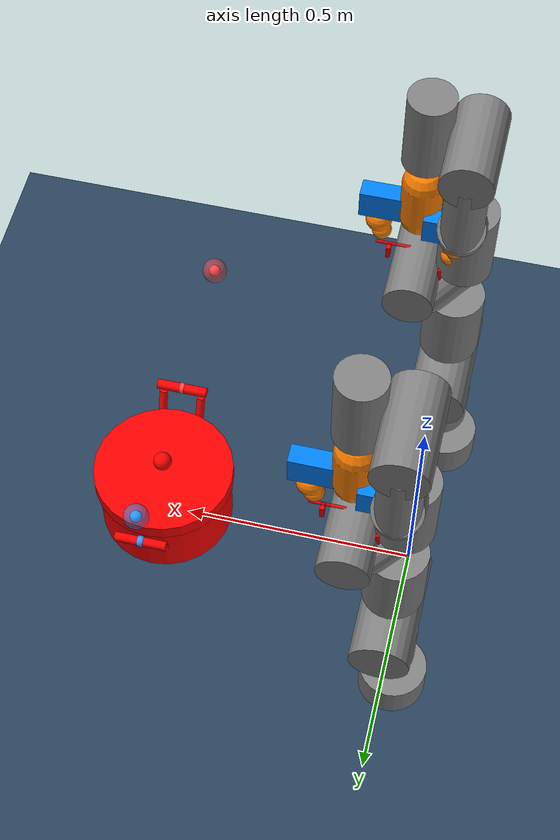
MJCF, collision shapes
<!-- PRIMITIVE-COLLISION variant of task.xml: same costs, weights and numerics,
     includes fr3_H_gripper_dual_prim.xml. Select with MJPC_DUAL_PRIM=1. -->
<mujoco model="Fr3HGripperDual">
  <size memory="100M" nuserdata="5"/>

  <custom>
    <numeric name="agent_planner" data="14"/>           <!-- FlowMPPIRpy, FM OFF -> vanilla MPPI over nu=16 -->
    <numeric name="agent_horizon" data="0.4"/>            <!-- headless-tuned: longer H -> smooth stop -->
    <numeric name="agent_timestep" data="0.03"/>   <!-- replan cost T_c must stay well below dt_mppi. nu=16: T_c 12.33ms at K=128/16thr -> ratio 0.41. -->
    <numeric name="agent_policy_width" data="0.0035"/>
    <numeric name="sampling_trajectories" data="128"/>    <!-- headless-tuned: K=128 -->
    <numeric name="sampling_spline_points" data="16"/>
    <numeric name="sampling_representation" data="0"/>
    <numeric name="sampling_exploration" data="1.0"/>
    <numeric name="sampling_lambda" data="1000"/>         <!-- if it DIVERGES, raise this (temperature) via MJPC_LAMBDA + watch ESS -->
    <numeric name="sampling_dc_noise" data="1"/>          <!-- DC noise = stable (per-knot diverges) -->
    <numeric name="perarm_groups" data="2"/>
    <numeric name="perarm_ctrl" size="16" data="0 0 0 0 0 0 0 0  1 1 1 1 1 1 1 1"/>
    <!-- where each arm's (pos3, ori3) block starts in the residual: L at 0, R at 41.
         Each arm's adaptive sigma is gated on its OWN error. -->
    <numeric name="perarm_res_off" size="2" data="0 41"/>
    <numeric name="perarm_term" size="15" data="0 0 0 0 0 0 0  1 1 1 1 1 1 1  -1"/>
    <numeric name="sampling_sigma_adapt" data="1"/>
    <numeric name="sampling_sigma_adapt_min" data="0.10"/>
    <numeric name="sampling_sigma_adapt_decay" data="0.97"/>
    <numeric name="sampling_sigma_adapt_thr" data="0.010"/>
    <numeric name="sampling_sigma_adapt_thr_ori" data="0.017"/>
    <numeric name="sampling_sigma_adapt_hyst" data="3"/>
    <numeric name="sampling_sigma_adapt_grow" data="1000"/>
    <numeric name="sampling_sigma_adapt_res_dim" data="6"/>   <!-- one (pos3,ori3) pair per group -->
    <numeric name="sampling_std_per_joint" size="16" data="1 1 1 1 0.5 0.5 0.5 0  1 1 1 1 0.5 0.5 0.5 0"/>
    <!-- per-joint cost separation (MJPC_PERJOINT=1): control-dim per arm joint,
         in joint_cent order (l1-7, r1-7). grippers (ctrl 7,15) are skipped. -->
    <numeric name="perjoint_ctrl" size="14" data="0 1 2 3 4 5 6  8 9 10 11 12 13 14"/>
  </custom>

  <statistic extent="1.0" center="0.3 0 0.4"/>
  <visual>
    <global azimuth="150" elevation="-20"/>
    <scale framelength="0.3" framewidth="0.03"/>
  </visual>

  <asset>
    <texture type="2d" name="groundplane" builtin="checker" mark="edge"
      rgb1="0.2 0.3 0.4" rgb2="0.1 0.2 0.3" markrgb="0.8 0.8 0.8" width="300" height="300"/>
    <material name="groundplane" texture="groundplane" texuniform="true" texrepeat="5 5" reflectance="0.2"/>
  </asset>

  <worldbody>
    <light pos="0 0 2" dir="0 0 -1" directional="true" diffuse="0.7 0.7 0.7"/>
    <geom name="floor" pos="0 0 0" size="0 0 0.05" type="plane" material="groundplane"/>

    <!-- per-arm draggable targets (mocap 0 = left, 1 = right). quat 0,1,0,0 = gripper-down. -->
    <body name="l_target" mocap="true" pos="0.5 0.3 0.5" quat="0 1 0 0">
      <geom type="sphere" size="0.025" rgba="0.2 0.6 1 0.5" contype="0" conaffinity="0"/>
      <site name="l_target_site" pos="0 0 0" size="0.012" rgba="0.2 0.6 1 1" group="0"/>
    </body>
    <body name="r_target" mocap="true" pos="0.5 -0.3 0.5" quat="0 1 0 0">
      <geom type="sphere" size="0.025" rgba="1 0.3 0.3 0.5" contype="0" conaffinity="0"/>
      <site name="r_target_site" pos="0 0 0" size="0.012" rgba="1 0.3 0.3 1" group="0"/>
    </body>
  </worldbody>

  <sensor>
    <!-- user = "norm_type weight w_lower w_upper p_smooth". Order MUST match Residual(). Total = 41. -->
    <user name="L_pos"    dim="3" user="2 1000000 0 5000000  0.01"/>
    <user name="L_ori"    dim="3" user="2 600000  0 6000000  0.01"/>
    <user name="L_cent"   dim="7" user="2 20      0 5000     1"/>
    <user name="L_nsvel"  dim="7" user="2 5000    0 5000000  0.01"/>
    <user name="L_vel"    dim="7" user="2 500     0 5000     0.01"/>
    <user name="L_limit"  dim="7" user="2 5000000 0 50000000 0.01"/>
    <user name="L_ureg"   dim="7" user="2 0.01    0 1        0.01"/>
    <user name="R_pos"    dim="3" user="2 1000000 0 5000000  0.01"/>
    <user name="R_ori"    dim="3" user="2 600000  0 6000000  0.01"/>
    <user name="R_cent"   dim="7" user="2 20      0 5000     1"/>
    <user name="R_nsvel"  dim="7" user="2 5000    0 5000000  0.01"/>
    <user name="R_vel"    dim="7" user="2 500     0 5000     0.01"/>
    <user name="R_limit"  dim="7" user="2 5000000 0 50000000 0.01"/>
    <user name="R_ureg"   dim="7" user="2 0.01    0 1        0.01"/>
    <!-- the ONLY coupling between the arms; shared by both per-arm costs -->
    <user name="collision" dim="1" user="2 500000 0 20000000 0.01"/>

    <framepos  name="l_hand"        objtype="site" objname="l_hand_site"/>
    <framequat name="l_hand_quat"   objtype="site" objname="l_hand_site"/>
    <framepos  name="r_hand"        objtype="site" objname="r_hand_site"/>
    <framequat name="r_hand_quat"   objtype="site" objname="r_hand_site"/>
    <framepos  name="l_target"      objtype="site" objname="l_target_site"/>
    <framequat name="l_target_quat" objtype="site" objname="l_target_site"/>
    <framepos  name="r_target"      objtype="site" objname="r_target_site"/>
    <framequat name="r_target_quat" objtype="site" objname="r_target_site"/>
  </sensor>

  <keyframe>
    <!-- l_arm(7) l_slides(3) r_arm(7) r_slides(3)  pot free(xyz + wxyz) -->
    <!-- prim: 2 finger slides per arm instead of 3 -->
    <key name="home" qpos="0 -0.6 0 -2.2 0 1.6 0.8  0 0  0 -0.6 0 -2.2 0 1.6 0.8  0 0  0.55 0 0.12  0.7071068 0 0 0.7071068"/>
  </keyframe>

  <include file="fr3_H_gripper_dual_prim.xml"/>
  <!-- pot AFTER the arms: its free joint is then the last 7 qpos entries. -->
  <include file="pot.xml"/>
</mujoco>

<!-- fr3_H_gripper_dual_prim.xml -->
<mujoco model="fr3_H_gripper_dual">
  <compiler angle="radian" meshdir="assets" />
  <option integrator="implicitfast" timestep="0.001" solver="Newton" iterations="100" jacobian="auto" tolerance="1e-8" cone="pyramidal" impratio="1" gravity="0 0 -9.81" />
  <option>
    <flag gravity="enable" override="enable" multiccd="enable" />
  </option>
  <default>
    <default class="fr3">
      <joint damping="0.21" armature="0.195" />
      <default class="visual_fr3">
        <geom type="mesh" group="2" contype="0" conaffinity="0" />
      </default>
      <default class="collision">
        <geom type="mesh" group="3" mass="0" density="0" />
      </default>
      <site size="0.001" rgba="0.5 0.5 0.5 0.3" group="4" />
    </default>
    <default class="H_gripper">
      <joint armature="0.1" damping="1.0" />
      <default class="visual">
        <geom type="mesh" contype="0" conaffinity="0" group="1" />
      </default>
      <default class="fingertip_pad_collision_1">
        <geom type="box" group="2" size="0.004 0.007 0.0135" contype="1" conaffinity="1" mass="0.01" pos="0.012 0.0 0.018" solref="0.02 1" solimp="0.95 0.99 0.001" friction="1.0 0.02 0.01" priority="3" rgba="1 0 0 0.5" />
      </default>
      <default class="fingertip_pad_collision_2">
        <geom type="box" group="2" size="0.004 0.007 0.0135" contype="1" conaffinity="1" mass="0.01" pos="-0.012 0.0 0.018" solref="0.02 1" solimp="0.95 0.99 0.001" friction="1.0 0.02 0.01" priority="3" rgba="1 0 0 0.5" />
      </default>
      <default class="rotate_A_link_collision">
        <geom type="box" group="2" size="0.025 0.015 0.025" contype="1" conaffinity="1" mass="0.01" pos="0.085 0 -0.003" solref="0.02 1" solimp="0.95 0.99 0.001" friction="1.0 0.02 0.01" priority="3" rgba="1 0 0 0.5" />
      </default>
      <default class="rotate_B_link_collision">
        <geom type="box" group="2" size="0.025 0.012 0.01" contype="1" conaffinity="1" mass="0.01" pos="-0.085 0.032 0.01" solref="0.02 1" solimp="0.95 0.99 0.001" friction="1.0 0.02 0.01" priority="3" rgba="1 0 0 0.5" />
      </default>
      <default class="rotate_C_link_collision">
        <geom type="box" group="2" size="0.025 0.012 0.01" contype="1" conaffinity="1" mass="0.01" pos="-0.085 -0.032 0.01" solref="0.02 1" solimp="0.95 0.99 0.001" friction="1.0 0.02 0.01" priority="3" rgba="1 0 0 0.5" />
      </default>
    </default>
  </default>
  <asset>
    <material name="black" rgba=".2 .2 .2 1" />
    <material name="white" rgba="1 1 1 1" />
    <material name="red" rgba="1 0.072272 0.039546 1" />
    <material name="gray" rgba="0.863156 0.863156 0.863157 1" />
    <material name="button_green" rgba="0.102241 0.571125 0.102242 1" />
    <material name="button_red" rgba="0.520996 0.008023 0.013702 1" />
    <material name="button_blue" rgba="0.024157 0.445201 0.737911 1" />
    <material name="off_white" rgba="0.901961 0.921569 0.929412 1" />
    <mesh file="link0_0.obj" />
    <mesh file="link0_1.obj" />
    <mesh file="link0_2.obj" />
    <mesh file="link0_3.obj" />
    <mesh file="link0_4.obj" />
    <mesh file="link0_5.obj" />
    <mesh file="link0_6.obj" />
    <mesh file="link1.obj" />
    <mesh file="link2.obj" />
    <mesh file="link3_0.obj" />
    <mesh file="link3_1.obj" />
    <mesh file="link4_0.obj" />
    <mesh file="link4_1.obj" />
    <mesh file="link5_0.obj" />
    <mesh file="link5_1.obj" />
    <mesh file="link5_2.obj" />
    <mesh file="link6_0.obj" />
    <mesh file="link6_1.obj" />
    <mesh file="link6_2.obj" />
    <mesh file="link6_3.obj" />
    <mesh file="link6_4.obj" />
    <mesh file="link6_5.obj" />
    <mesh file="link6_6.obj" />
    <mesh file="link6_7.obj" />
    <mesh file="link7_0.obj" />
    <mesh file="link7_1.obj" />
    <mesh file="link7_2.obj" />
    <mesh file="link7_3.obj" />
    <mesh name="base_link" file="gripper/base_link.STL" />
    <mesh name="base_finger_A_link" file="gripper/base_finger_A_link.STL" />
    <mesh name="finger_A_slide_link" file="gripper/finger_A_slide_link.STL" />
    <mesh name="finger_A_fixed_slide_link" file="gripper/finger_A_fixed_slide_link.STL" />
    <mesh name="finger_A_sub_link_1" file="gripper/finger_A_sub_link_1.STL" />
    <mesh name="finger_A_sub_link_2" file="gripper/finger_A_sub_link_2.STL" />
    <mesh name="finger_A_sub_bolt_link_1" file="gripper/finger_A_sub_bolt_link_1.STL" />
    <mesh name="finger_A_sub_link_3" file="gripper/finger_A_sub_link_3.STL" />
    <mesh name="finger_A_sub_bolt_link_2" file="gripper/finger_A_sub_bolt_link_2.STL" />
    <mesh name="finger_A_sub_link_4" file="gripper/finger_A_sub_link_4.STL" />
    <mesh name="finger_A_sub_bolt_link_3" file="gripper/finger_A_sub_bolt_link_3.STL" />
    <mesh name="finger_A_sub_link_5" file="gripper/finger_A_sub_link_5.STL" />
    <mesh name="finger_A_sub_link_6" file="gripper/finger_A_sub_link_6.STL" />
    <mesh name="finger_A_sub_link_7" file="gripper/finger_A_sub_link_7.STL" />
    <mesh name="finger_A_sub_bolt_link_4" file="gripper/finger_A_sub_bolt_link_4.STL" />
    <mesh name="finger_A_sub_link_8" file="gripper/finger_A_sub_link_8.STL" />
    <mesh name="finger_A_sub_link_9" file="gripper/finger_A_sub_link_9.STL" />
    <mesh name="finger_A_sub_link_10" file="gripper/finger_A_sub_link_10.STL" />
    <mesh name="finger_A_sub_link_11" file="gripper/finger_A_sub_link_11.STL" />
    <mesh name="finger_A_sub_link_12" file="gripper/finger_A_sub_link_12.STL" />
    <mesh name="finger_B_rot_link" file="gripper/finger_B_rot_link.STL" />
    <mesh name="finger_B_link" file="gripper/finger_B_link.STL" />
    <mesh name="finger_B_slide_link" file="gripper/finger_B_slide_link.STL" />
    <mesh name="finger_B_fixed_slide_link" file="gripper/finger_B_fixed_slide_link.STL" />
    <mesh name="finger_B_sub_link_1" file="gripper/finger_B_sub_link_1.STL" />
    <mesh name="finger_B_sub_link_2" file="gripper/finger_B_sub_link_2.STL" />
    <mesh name="finger_B_sub_bolt_link_1" file="gripper/finger_B_sub_bolt_link_1.STL" />
    <mesh name="finger_B_sub_link_3" file="gripper/finger_B_sub_link_3.STL" />
    <mesh name="finger_B_sub_bolt_link_2" file="gripper/finger_B_sub_bolt_link_2.STL" />
    <mesh name="finger_B_sub_link_4" file="gripper/finger_B_sub_link_4.STL" />
    <mesh name="finger_B_sub_bolt_link_3" file="gripper/finger_B_sub_bolt_link_3.STL" />
    <mesh name="finger_B_sub_link_5" file="gripper/finger_B_sub_link_5.STL" />
    <mesh name="finger_B_sub_link_6" file="gripper/finger_B_sub_link_6.STL" />
    <mesh name="finger_B_sub_link_7" file="gripper/finger_B_sub_link_7.STL" />
    <mesh name="finger_B_sub_bolt_link_4" file="gripper/finger_B_sub_bolt_link_4.STL" />
    <mesh name="finger_B_sub_link_8" file="gripper/finger_B_sub_link_8.STL" />
    <mesh name="finger_B_sub_link_9" file="gripper/finger_B_sub_link_9.STL" />
    <mesh name="finger_B_sub_link_10" file="gripper/finger_B_sub_link_10.STL" />
    <mesh name="finger_B_sub_link_11" file="gripper/finger_B_sub_link_11.STL" />
    <mesh name="finger_B_sub_link_12" file="gripper/finger_B_sub_link_12.STL" />
    <mesh name="finger_C_rot_link" file="gripper/finger_C_rot_link.STL" />
    <mesh name="finger_C_link" file="gripper/finger_C_link.STL" />
    <mesh name="finger_C_slide_link" file="gripper/finger_C_slide_link.STL" />
    <mesh name="finger_C_fixed_slide_link" file="gripper/finger_C_fixed_slide_link.STL" />
    <mesh name="finger_C_sub_link_1" file="gripper/finger_C_sub_link_1.STL" />
    <mesh name="finger_C_sub_link_2" file="gripper/finger_C_sub_link_2.STL" />
    <mesh name="finger_C_sub_bolt_link_1" file="gripper/finger_C_sub_bolt_link_1.STL" />
    <mesh name="finger_C_sub_link_3" file="gripper/finger_C_sub_link_3.STL" />
    <mesh name="finger_C_sub_bolt_link_2" file="gripper/finger_C_sub_bolt_link_2.STL" />
    <mesh name="finger_C_sub_link_4" file="gripper/finger_C_sub_link_4.STL" />
    <mesh name="finger_C_sub_bolt_link_3" file="gripper/finger_C_sub_bolt_link_3.STL" />
    <mesh name="finger_C_sub_link_5" file="gripper/finger_C_sub_link_5.STL" />
    <mesh name="finger_C_sub_link_6" file="gripper/finger_C_sub_link_6.STL" />
    <mesh name="finger_C_sub_link_7" file="gripper/finger_C_sub_link_7.STL" />
    <mesh name="finger_C_sub_bolt_link_4" file="gripper/finger_C_sub_bolt_link_4.STL" />
    <mesh name="finger_C_sub_link_8" file="gripper/finger_C_sub_link_8.STL" />
    <mesh name="finger_C_sub_link_9" file="gripper/finger_C_sub_link_9.STL" />
    <mesh name="finger_C_sub_link_10" file="gripper/finger_C_sub_link_10.STL" />
    <mesh name="finger_C_sub_link_11" file="gripper/finger_C_sub_link_11.STL" />
    <mesh name="finger_C_sub_link_12" file="gripper/finger_C_sub_link_12.STL" />
  </asset>
  <worldbody>
    <body name="l_base" pos="0 0.3 0" gravcomp="1">
      <inertial pos="0 0 0" mass="0.001" diaginertia="1e-6 1e-6 1e-6" />
      <geom mesh="link0_0" material="black" class="visual_fr3" />
      <geom mesh="link0_1" material="white" class="visual_fr3" />
      <geom mesh="link0_2" material="white" class="visual_fr3" />
      <geom mesh="link0_3" material="white" class="visual_fr3" />
      <geom mesh="link0_4" material="white" class="visual_fr3" />
      <geom mesh="link0_5" material="red" class="visual_fr3" />
      <geom mesh="link0_6" material="black" class="visual_fr3" />
      <geom name="l_link0_R_col" type="cylinder" size="0.07 0.04" pos="-0.02 0 0.04" class="collision" />
      <body name="l_fr3_link1" pos="0 0 0.333" childclass="fr3" gravcomp="1">
        <inertial pos="4.128e-07 -0.0181251 -0.0386036" quat="0.998098 -0.0605364 0.00380499 0.0110109" mass="2.92747" diaginertia="0.0239286 0.0227246 0.00610634" />
        <joint name="l_fr3_joint1" axis="0 0 1" range="-2.7437 2.7437" actuatorfrcrange="-87 87" />
        <geom name="l_link1_R_col1" type="cylinder" size="0.06 0.06" pos="0 0 -0.13" class="collision" />
        <geom name="l_link1_R_col2" type="cylinder" size="0.06 0.12" pos="0 0 0.0" euler="-1.5708 0 0" class="collision" />
        <geom material="white" mesh="link1" class="visual_fr3" />
        <body name="l_fr3_link2" quat="1 -1 0 0" gravcomp="1">
          <inertial pos="0.00318289 -0.0743222 0.00881461" quat="0.502599 0.584437 -0.465998 0.434366" mass="2.93554" diaginertia="0.0629567 0.0411924 0.0246371" />
          <joint name="l_fr3_joint2" axis="0 0 1" range="-1.7837 1.7837" actuatorfrcrange="-87 87" />
          <geom material="white" mesh="link2" class="visual_fr3" />
          <geom name="l_link2_R_col" type="cylinder" size="0.06 0.08" pos="0 -0.16 0.0" euler="-1.5708 0 0" class="collision" />
          <body name="l_fr3_link3" pos="0 -0.316 0" quat="1 1 0 0" gravcomp="1">
            <inertial pos="0.0407016 -0.00482006 -0.0289731" quat="0.921025 -0.244161 0.155272 0.260745" mass="2.2449" diaginertia="0.0267409 0.0189869 0.0171587" />
            <joint name="l_fr3_joint3" axis="0 0 1" range="-2.9007 2.9007" actuatorfrcrange="-87 87" />
            <geom mesh="link3_0" material="white" class="visual_fr3" />
            <geom mesh="link3_1" material="black" class="visual_fr3" />
            <geom name="l_link3_R_col1" type="capsule" size="0.04" fromto="0 0 0 0.05 0.03 -0.05" class="collision" />
            <body name="l_fr3_link4" pos="0.0825 0 0" quat="1 1 0 0" gravcomp="1">
              <inertial pos="-0.0459101 0.0630493 -0.00851879" quat="0.438018 0.803311 0.00937812 0.403414" mass="2.6156" diaginertia="0.05139 0.0372717 0.0160047" />
              <joint name="l_fr3_joint4" axis="0 0 1" range="-3.0421 -0.1518" actuatorfrcrange="-87 87" />
              <geom mesh="link4_0" material="white" class="visual_fr3" />
              <geom mesh="link4_1" material="black" class="visual_fr3" />
              <geom name="l_link4_R_col1" type="cylinder" size="0.05 0.11" pos="0 0 0" class="collision" />
              <geom name="l_link4_R_col2" type="cylinder" size="0.055 0.08" pos="-0.09 0.1 0" euler="-1.5708 0 0" class="collision" />
              <body name="l_fr3_link5" pos="-0.0825 0.384 0" quat="1 -1 0 0" gravcomp="1">
                <inertial pos="-0.00160396 0.0292536 -0.0972966" quat="0.919031 0.125604 0.0751531 -0.366003" mass="2.32712" diaginertia="0.0579335 0.0449144 0.0130634" />
                <joint name="l_fr3_joint5" axis="0 0 1" range="-2.8065 2.8065" actuatorfrcrange="-12 12" armature="0.074" frictionloss="0.763" />
                <geom mesh="link5_0" material="white" class="visual_fr3" />
                <geom mesh="link5_1" material="white" class="visual_fr3" />
                <geom mesh="link5_2" material="black" class="visual_fr3" />
                <geom name="l_link5_R_col1" type="cylinder" size="0.04 0.08" pos="0.0 0.09 -0.1" class="collision" />
                <geom name="l_link5_R_col2" type="cylinder" size="0.045 0.04" pos="0.0 0.07 -0.17" euler="-0.7854 0 0" class="collision" />
                <body name="l_fr3_link6" quat="1 1 0 0" gravcomp="1">
                  <inertial pos="0.0597131 -0.0410295 -0.0101693" quat="0.621301 0.552665 0.510011 0.220081" mass="1.81704" diaginertia="0.0175039 0.0161123 0.00193529" />
                  <joint name="l_fr3_joint6" axis="0 0 1" range="0.5445 4.5169" actuatorfrcrange="-12 12" armature="0.074" frictionloss="0.44" />
                  <geom mesh="link6_0" material="button_green" class="visual_fr3" />
                  <geom mesh="link6_1" material="white" class="visual_fr3" />
                  <geom mesh="link6_2" material="white" class="visual_fr3" />
                  <geom mesh="link6_3" material="gray" class="visual_fr3" />
                  <geom mesh="link6_4" material="button_red" class="visual_fr3" />
                  <geom mesh="link6_5" material="white" class="visual_fr3" />
                  <geom mesh="link6_6" material="black" class="visual_fr3" />
                  <geom mesh="link6_7" material="button_blue" class="visual_fr3" />
                  <geom name="l_link6_R_col1" type="cylinder" size="0.05 0.09" pos="0 0 -0.038" class="collision" />
                  <body name="l_fr3_link7" pos="0.088 0 0" quat="1 1 0 0" gravcomp="1">
                    <inertial pos="0.00452258 0.00862619 -0.0161633" quat="0.727579 0.0978688 -0.24906 0.63168" mass="0.627143" diaginertia="0.000223836 0.000223642 5.64132e-07" />
                    <joint name="l_fr3_joint7" axis="0 0 1" range="-3.0159 3.0159" actuatorfrcrange="-12 12" armature="0.074" frictionloss="0.248" />
                    <geom mesh="link7_0" material="black" class="visual_fr3" />
                    <geom mesh="link7_1" material="white" class="visual_fr3" />
                    <geom mesh="link7_2" material="white" class="visual_fr3" />
                    <geom mesh="link7_3" material="black" class="visual_fr3" />
                    <geom name="l_link7_R_col" type="cylinder" size="0.045 0.08" pos="0 0 0.005" class="collision" />
                    <site name="l_hand_site" pos="0 0 0.365" group="0" />
                    <site name="l_frame_x" type="cylinder" pos="0.04 0 0.34" euler="0 1.5708 0" size="0.003 0.04" rgba="1 0 0 0.8" group="1" />
                    <site name="l_frame_y" type="cylinder" pos="0 0.04 0.34" euler="1.5708 0 0" size="0.003 0.04" rgba="0 1 0 0.8" group="1" />
                    <site name="l_frame_z" type="cylinder" pos="0 0 0.38" euler="0 0 0" size="0.003 0.04" rgba="0 0 1 0.8" group="1" />
                    <body name="l_hand" childclass="H_gripper" pos="0 0 0.220" gravcomp="0">
                      <site name="l_gripper_site" type="sphere" pos="0 0 0.145" size="0.005" rgba="1 0 0 1" group="0" />
                      <inertial pos="0.00343395 0.00159719 -0.0359415" quat="-0.0187647 0.714578 0.0193531 0.699036" mass="0.565346" diaginertia="0.000313332 0.000193161 0.000168441" />
                      <!-- VISUAL group 1 / contype 0 : original mesh, render unchanged -->
                      <geom class="visual" mesh="base_link" rgba="0.752941 0.752941 0.752941 1" />
                      <geom name="l_gpu_base_col" type="capsule" size="0.040 0.045" pos="0 0 -0.028" group="3" mass="0" contype="1" conaffinity="1" rgba="1 0.5 0 0.3" />
                      <geom name="l_gpu_knuckle_A" type="box" size="0.055 0.018 0.030" pos="0.060 0 0.000" group="3" mass="0" contype="1" conaffinity="1" rgba="0 0.5 1 0.3" />
                      <geom name="l_gpu_knuckle_B" type="box" size="0.050 0.016 0.028" pos="-0.062 0.033 0.006" group="3" mass="0" contype="1" conaffinity="1" rgba="0 0.5 1 0.3" />
                      <geom name="l_gpu_knuckle_C" type="box" size="0.050 0.016 0.028" pos="-0.062 -0.033 0.006" group="3" mass="0" contype="1" conaffinity="1" rgba="0 0.5 1 0.3" />
                      <body name="l_finger_A" pos="0 0 0" gravcomp="0">
                        <inertial pos="0.045 0 0.10" mass="0.12" diaginertia="1e-4 1e-4 2e-5" />
                        <joint name="l_finger_A_slide_joint" type="slide" axis="-1 0 0" range="0 0.05" damping="10" armature="0.01" />
                        <geom name="l_gripper_pad_1" class="fingertip_pad_collision_2" pos="0.0541 0 0.143" group="3" />
                        <geom name="l_gpu_fA_sph_0" type="sphere" size="0.0261" pos="0.0772 -0.0002 0.0493" group="3" mass="0" contype="1" conaffinity="1" rgba="1 0.5 0 0.3" />
                        <geom name="l_gpu_fA_sph_1" type="sphere" size="0.0193" pos="0.0704 0.0005 0.0818" group="3" mass="0" contype="1" conaffinity="1" rgba="1 0.5 0 0.3" />
                      </body>
                      <body name="l_finger_BC" pos="0 0 0" gravcomp="0">
                        <inertial pos="-0.045 0 0.10" mass="0.24" diaginertia="2e-4 2e-4 4e-5" />
                        <joint name="l_finger_BC_slide_joint" type="slide" axis="1 0 0" range="0 0.05" damping="10" armature="0.01" />
                        <geom name="l_gripper_pad_2" class="fingertip_pad_collision_1" pos="-0.0541 0.0321 0.143" group="3" />
                        <geom name="l_gripper_pad_3" class="fingertip_pad_collision_1" pos="-0.0541 -0.0321 0.143" group="3" />
                        <geom name="l_gpu_fB_sph_0" type="sphere" size="0.0264" pos="-0.0775 0.0323 0.0497" group="3" mass="0" contype="1" conaffinity="1" rgba="1 0.5 0 0.3" />
                        <geom name="l_gpu_fB_sph_1" type="sphere" size="0.0193" pos="-0.0704 0.0317 0.0829" group="3" mass="0" contype="1" conaffinity="1" rgba="1 0.5 0 0.3" />
                        <geom name="l_gpu_fC_sph_0" type="sphere" size="0.0264" pos="-0.0775 -0.0319 0.0497" group="3" mass="0" contype="1" conaffinity="1" rgba="1 0.5 0 0.3" />
                        <geom name="l_gpu_fC_sph_1" type="sphere" size="0.0193" pos="-0.0704 -0.0325 0.0829" group="3" mass="0" contype="1" conaffinity="1" rgba="1 0.5 0 0.3" />
                      </body>
                    </body>
                  </body>
                </body>
              </body>
            </body>
          </body>
        </body>
      </body>
    </body>
    <body name="r_base" pos="0 -0.3 0" gravcomp="1">
      <inertial pos="0 0 0" mass="0.001" diaginertia="1e-6 1e-6 1e-6" />
      <geom mesh="link0_0" material="black" class="visual_fr3" />
      <geom mesh="link0_1" material="white" class="visual_fr3" />
      <geom mesh="link0_2" material="white" class="visual_fr3" />
      <geom mesh="link0_3" material="white" class="visual_fr3" />
      <geom mesh="link0_4" material="white" class="visual_fr3" />
      <geom mesh="link0_5" material="red" class="visual_fr3" />
      <geom mesh="link0_6" material="black" class="visual_fr3" />
      <geom name="r_link0_R_col" type="cylinder" size="0.07 0.04" pos="-0.02 0 0.04" class="collision" />
      <body name="r_fr3_link1" pos="0 0 0.333" childclass="fr3" gravcomp="1">
        <inertial pos="4.128e-07 -0.0181251 -0.0386036" quat="0.998098 -0.0605364 0.00380499 0.0110109" mass="2.92747" diaginertia="0.0239286 0.0227246 0.00610634" />
        <joint name="r_fr3_joint1" axis="0 0 1" range="-2.7437 2.7437" actuatorfrcrange="-87 87" />
        <geom name="r_link1_R_col1" type="cylinder" size="0.06 0.06" pos="0 0 -0.13" class="collision" />
        <geom name="r_link1_R_col2" type="cylinder" size="0.06 0.12" pos="0 0 0.0" euler="-1.5708 0 0" class="collision" />
        <geom material="white" mesh="link1" class="visual_fr3" />
        <body name="r_fr3_link2" quat="1 -1 0 0" gravcomp="1">
          <inertial pos="0.00318289 -0.0743222 0.00881461" quat="0.502599 0.584437 -0.465998 0.434366" mass="2.93554" diaginertia="0.0629567 0.0411924 0.0246371" />
          <joint name="r_fr3_joint2" axis="0 0 1" range="-1.7837 1.7837" actuatorfrcrange="-87 87" />
          <geom material="white" mesh="link2" class="visual_fr3" />
          <geom name="r_link2_R_col" type="cylinder" size="0.06 0.08" pos="0 -0.16 0.0" euler="-1.5708 0 0" class="collision" />
          <body name="r_fr3_link3" pos="0 -0.316 0" quat="1 1 0 0" gravcomp="1">
            <inertial pos="0.0407016 -0.00482006 -0.0289731" quat="0.921025 -0.244161 0.155272 0.260745" mass="2.2449" diaginertia="0.0267409 0.0189869 0.0171587" />
            <joint name="r_fr3_joint3" axis="0 0 1" range="-2.9007 2.9007" actuatorfrcrange="-87 87" />
            <geom mesh="link3_0" material="white" class="visual_fr3" />
            <geom mesh="link3_1" material="black" class="visual_fr3" />
            <geom name="r_link3_R_col1" type="capsule" size="0.04" fromto="0 0 0 0.05 0.03 -0.05" class="collision" />
            <body name="r_fr3_link4" pos="0.0825 0 0" quat="1 1 0 0" gravcomp="1">
              <inertial pos="-0.0459101 0.0630493 -0.00851879" quat="0.438018 0.803311 0.00937812 0.403414" mass="2.6156" diaginertia="0.05139 0.0372717 0.0160047" />
              <joint name="r_fr3_joint4" axis="0 0 1" range="-3.0421 -0.1518" actuatorfrcrange="-87 87" />
              <geom mesh="link4_0" material="white" class="visual_fr3" />
              <geom mesh="link4_1" material="black" class="visual_fr3" />
              <geom name="r_link4_R_col1" type="cylinder" size="0.05 0.11" pos="0 0 0" class="collision" />
              <geom name="r_link4_R_col2" type="cylinder" size="0.055 0.08" pos="-0.09 0.1 0" euler="-1.5708 0 0" class="collision" />
              <body name="r_fr3_link5" pos="-0.0825 0.384 0" quat="1 -1 0 0" gravcomp="1">
                <inertial pos="-0.00160396 0.0292536 -0.0972966" quat="0.919031 0.125604 0.0751531 -0.366003" mass="2.32712" diaginertia="0.0579335 0.0449144 0.0130634" />
                <joint name="r_fr3_joint5" axis="0 0 1" range="-2.8065 2.8065" actuatorfrcrange="-12 12" armature="0.074" frictionloss="0.763" />
                <geom mesh="link5_0" material="white" class="visual_fr3" />
                <geom mesh="link5_1" material="white" class="visual_fr3" />
                <geom mesh="link5_2" material="black" class="visual_fr3" />
                <geom name="r_link5_R_col1" type="cylinder" size="0.04 0.08" pos="0.0 0.09 -0.1" class="collision" />
                <geom name="r_link5_R_col2" type="cylinder" size="0.045 0.04" pos="0.0 0.07 -0.17" euler="-0.7854 0 0" class="collision" />
                <body name="r_fr3_link6" quat="1 1 0 0" gravcomp="1">
                  <inertial pos="0.0597131 -0.0410295 -0.0101693" quat="0.621301 0.552665 0.510011 0.220081" mass="1.81704" diaginertia="0.0175039 0.0161123 0.00193529" />
                  <joint name="r_fr3_joint6" axis="0 0 1" range="0.5445 4.5169" actuatorfrcrange="-12 12" armature="0.074" frictionloss="0.44" />
                  <geom mesh="link6_0" material="button_green" class="visual_fr3" />
                  <geom mesh="link6_1" material="white" class="visual_fr3" />
                  <geom mesh="link6_2" material="white" class="visual_fr3" />
                  <geom mesh="link6_3" material="gray" class="visual_fr3" />
                  <geom mesh="link6_4" material="button_red" class="visual_fr3" />
                  <geom mesh="link6_5" material="white" class="visual_fr3" />
                  <geom mesh="link6_6" material="black" class="visual_fr3" />
                  <geom mesh="link6_7" material="button_blue" class="visual_fr3" />
                  <geom name="r_link6_R_col1" type="cylinder" size="0.05 0.09" pos="0 0 -0.038" class="collision" />
                  <body name="r_fr3_link7" pos="0.088 0 0" quat="1 1 0 0" gravcomp="1">
                    <inertial pos="0.00452258 0.00862619 -0.0161633" quat="0.727579 0.0978688 -0.24906 0.63168" mass="0.627143" diaginertia="0.000223836 0.000223642 5.64132e-07" />
                    <joint name="r_fr3_joint7" axis="0 0 1" range="-3.0159 3.0159" actuatorfrcrange="-12 12" armature="0.074" frictionloss="0.248" />
                    <geom mesh="link7_0" material="black" class="visual_fr3" />
                    <geom mesh="link7_1" material="white" class="visual_fr3" />
                    <geom mesh="link7_2" material="white" class="visual_fr3" />
                    <geom mesh="link7_3" material="black" class="visual_fr3" />
                    <geom name="r_link7_R_col" type="cylinder" size="0.045 0.08" pos="0 0 0.005" class="collision" />
                    <site name="r_hand_site" pos="0 0 0.365" group="0" />
                    <site name="r_frame_x" type="cylinder" pos="0.04 0 0.34" euler="0 1.5708 0" size="0.003 0.04" rgba="1 0 0 0.8" group="1" />
                    <site name="r_frame_y" type="cylinder" pos="0 0.04 0.34" euler="1.5708 0 0" size="0.003 0.04" rgba="0 1 0 0.8" group="1" />
                    <site name="r_frame_z" type="cylinder" pos="0 0 0.38" euler="0 0 0" size="0.003 0.04" rgba="0 0 1 0.8" group="1" />
                    <body name="r_hand" childclass="H_gripper" pos="0 0 0.220" gravcomp="0">
                      <site name="r_gripper_site" type="sphere" pos="0 0 0.145" size="0.005" rgba="1 0 0 1" group="0" />
                      <inertial pos="0.00343395 0.00159719 -0.0359415" quat="-0.0187647 0.714578 0.0193531 0.699036" mass="0.565346" diaginertia="0.000313332 0.000193161 0.000168441" />
                      <!-- VISUAL group 1 / contype 0 : original mesh, render unchanged -->
                      <geom class="visual" mesh="base_link" rgba="0.752941 0.752941 0.752941 1" />
                      <geom name="r_gpu_base_col" type="capsule" size="0.040 0.045" pos="0 0 -0.028" group="3" mass="0" contype="1" conaffinity="1" rgba="1 0.5 0 0.3" />
                      <geom name="r_gpu_knuckle_A" type="box" size="0.055 0.018 0.030" pos="0.060 0 0.000" group="3" mass="0" contype="1" conaffinity="1" rgba="0 0.5 1 0.3" />
                      <geom name="r_gpu_knuckle_B" type="box" size="0.050 0.016 0.028" pos="-0.062 0.033 0.006" group="3" mass="0" contype="1" conaffinity="1" rgba="0 0.5 1 0.3" />
                      <geom name="r_gpu_knuckle_C" type="box" size="0.050 0.016 0.028" pos="-0.062 -0.033 0.006" group="3" mass="0" contype="1" conaffinity="1" rgba="0 0.5 1 0.3" />
                      <body name="r_finger_A" pos="0 0 0" gravcomp="0">
                        <inertial pos="0.045 0 0.10" mass="0.12" diaginertia="1e-4 1e-4 2e-5" />
                        <joint name="r_finger_A_slide_joint" type="slide" axis="-1 0 0" range="0 0.05" damping="10" armature="0.01" />
                        <geom name="r_gripper_pad_1" class="fingertip_pad_collision_2" pos="0.0541 0 0.143" group="3" />
                        <geom name="r_gpu_fA_sph_0" type="sphere" size="0.0261" pos="0.0772 -0.0002 0.0493" group="3" mass="0" contype="1" conaffinity="1" rgba="1 0.5 0 0.3" />
                        <geom name="r_gpu_fA_sph_1" type="sphere" size="0.0193" pos="0.0704 0.0005 0.0818" group="3" mass="0" contype="1" conaffinity="1" rgba="1 0.5 0 0.3" />
                      </body>
                      <body name="r_finger_BC" pos="0 0 0" gravcomp="0">
                        <inertial pos="-0.045 0 0.10" mass="0.24" diaginertia="2e-4 2e-4 4e-5" />
                        <joint name="r_finger_BC_slide_joint" type="slide" axis="1 0 0" range="0 0.05" damping="10" armature="0.01" />
                        <geom name="r_gripper_pad_2" class="fingertip_pad_collision_1" pos="-0.0541 0.0321 0.143" group="3" />
                        <geom name="r_gripper_pad_3" class="fingertip_pad_collision_1" pos="-0.0541 -0.0321 0.143" group="3" />
                        <geom name="r_gpu_fB_sph_0" type="sphere" size="0.0264" pos="-0.0775 0.0323 0.0497" group="3" mass="0" contype="1" conaffinity="1" rgba="1 0.5 0 0.3" />
                        <geom name="r_gpu_fB_sph_1" type="sphere" size="0.0193" pos="-0.0704 0.0317 0.0829" group="3" mass="0" contype="1" conaffinity="1" rgba="1 0.5 0 0.3" />
                        <geom name="r_gpu_fC_sph_0" type="sphere" size="0.0264" pos="-0.0775 -0.0319 0.0497" group="3" mass="0" contype="1" conaffinity="1" rgba="1 0.5 0 0.3" />
                        <geom name="r_gpu_fC_sph_1" type="sphere" size="0.0193" pos="-0.0704 -0.0325 0.0829" group="3" mass="0" contype="1" conaffinity="1" rgba="1 0.5 0 0.3" />
                      </body>
                    </body>
                  </body>
                </body>
              </body>
            </body>
          </body>
        </body>
      </body>
    </body>
  </worldbody>
  <contact>
    <exclude name="l_grip_1" body1="l_hand" body2="l_finger_A" />
    <exclude name="l_grip_2" body1="l_hand" body2="l_finger_BC" />
    <exclude name="l_grip_3" body1="l_finger_A" body2="l_finger_BC" />
    <exclude name="r_grip_1" body1="r_hand" body2="r_finger_A" />
    <exclude name="r_grip_2" body1="r_hand" body2="r_finger_BC" />
    <exclude name="r_grip_3" body1="r_finger_A" body2="r_finger_BC" />
  </contact>
  <equality>
    <!-- ONE equality per arm: finger_BC slaved 1:1 to finger_A -> a single driven
         grasp dof per gripper, commanded through {l,r}_grab_motor. -->
    <joint name="l_finger_slide_1" joint1="l_finger_A_slide_joint" joint2="l_finger_BC_slide_joint" polycoef="0 1 0 0 0" solref="0.002 1" />
    <joint name="r_finger_slide_1" joint1="r_finger_A_slide_joint" joint2="r_finger_BC_slide_joint" polycoef="0 1 0 0 0" solref="0.002 1" />
  </equality>
  <actuator>
    <motor name="l_actuator1" joint="l_fr3_joint1" ctrllimited="true" ctrlrange="-87.0 87.0" />
    <motor name="l_actuator2" joint="l_fr3_joint2" ctrllimited="true" ctrlrange="-87.0 87.0" />
    <motor name="l_actuator3" joint="l_fr3_joint3" ctrllimited="true" ctrlrange="-87.0 87.0" />
    <motor name="l_actuator4" joint="l_fr3_joint4" ctrllimited="true" ctrlrange="-87.0 87.0" />
    <motor name="l_actuator5" joint="l_fr3_joint5" ctrllimited="true" ctrlrange="-12.0 12.0" />
    <motor name="l_actuator6" joint="l_fr3_joint6" ctrllimited="true" ctrlrange="-12.0 12.0" />
    <motor name="l_actuator7" joint="l_fr3_joint7" ctrllimited="true" ctrlrange="-12.0 12.0" />
    <position name="l_grab_motor" joint="l_finger_A_slide_joint" kp="200" kv="10" ctrllimited="true" ctrlrange="-0.1 0.1" forcerange="-10 10" />
    <motor name="r_actuator1" joint="r_fr3_joint1" ctrllimited="true" ctrlrange="-87.0 87.0" />
    <motor name="r_actuator2" joint="r_fr3_joint2" ctrllimited="true" ctrlrange="-87.0 87.0" />
    <motor name="r_actuator3" joint="r_fr3_joint3" ctrllimited="true" ctrlrange="-87.0 87.0" />
    <motor name="r_actuator4" joint="r_fr3_joint4" ctrllimited="true" ctrlrange="-87.0 87.0" />
    <motor name="r_actuator5" joint="r_fr3_joint5" ctrllimited="true" ctrlrange="-12.0 12.0" />
    <motor name="r_actuator6" joint="r_fr3_joint6" ctrllimited="true" ctrlrange="-12.0 12.0" />
    <motor name="r_actuator7" joint="r_fr3_joint7" ctrllimited="true" ctrlrange="-12.0 12.0" />
    <position name="r_grab_motor" joint="r_finger_A_slide_joint" kp="200" kv="10" ctrllimited="true" ctrlrange="-0.1 0.1" forcerange="-10 10" />
  </actuator>
</mujoco>

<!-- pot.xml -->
<mujoco model="pot">
  <asset>
    <mesh name="pot_mesh" file="pot.obj"/>
  </asset>

  <worldbody>
    <!-- quat 0.7071 0 0 0.7071 = +90 deg about z: the handles start along +-x in
         the mesh, this turns them to +-y so the left arm (y +0.3) and the right
         arm (y -0.3) each face one handle. -->
    <body name="pot" pos="0.55 0 0.12" quat="0.7071068 0 0 0.7071068">
      <freejoint name="pot_free"/>
      <geom name="pot_visual" type="mesh" mesh="pot_mesh" mass="0"
            contype="0" conaffinity="0" group="2" rgba="0.72 0.74 0.78 1"/>
      <geom name="pot_body_col" group="3" type="cylinder" size="0.145 0.070" pos="0 0 -0.050"
            mass="0.80" contype="1" conaffinity="1" rgba="1 0 0 0.25"/>
      <geom name="pot_lid_col" group="3" type="cylinder" size="0.152 0.018" pos="0 0 0.034"
            mass="0.10" contype="1" conaffinity="1" rgba="1 0 0 0.25"/>
      <geom name="pot_knob_col" group="3" type="sphere" size="0.020" pos="0 0 0.080"
            mass="0.02" contype="1" conaffinity="1" rgba="1 0 0 0.25"/>
      <geom name="pot_handle_l_bar" group="3" type="cylinder" size="0.010"
            fromto="0.1935 -0.0506 0.0697  0.1935 0.0598 0.0697"
            mass="0.03" contype="1" conaffinity="1" rgba="1 0 0 0.25"/>
      <geom name="pot_handle_l_leg1" group="3" type="cylinder" size="0.009"
            fromto="0.168 -0.0366 0.014  0.191 -0.0366 0.062"
            mass="0.005" contype="1" conaffinity="1" rgba="1 0 0 0.25"/>
      <geom name="pot_handle_l_leg2" group="3" type="cylinder" size="0.009"
            fromto="0.168 0.0466 0.014  0.191 0.0466 0.062"
            mass="0.005" contype="1" conaffinity="1" rgba="1 0 0 0.25"/>
      <geom name="pot_handle_r_bar" group="3" type="cylinder" size="0.011"
            fromto="-0.1957 -0.0639 0.0727  -0.1957 0.0463 0.0727"
            mass="0.03" contype="1" conaffinity="1" rgba="1 0 0 0.25"/>
      <geom name="pot_handle_r_leg1" group="3" type="cylinder" size="0.009"
            fromto="-0.168 -0.0496 0.014  -0.1881 -0.0496 0.062"
            mass="0.005" contype="1" conaffinity="1" rgba="1 0 0 0.25"/>
      <geom name="pot_handle_r_leg2" group="3" type="cylinder" size="0.009"
            fromto="-0.168 0.0352 0.014  -0.1881 0.0352 0.062"
            mass="0.005" contype="1" conaffinity="1" rgba="1 0 0 0.25"/>
            mass="0.005" contype="1" conaffinity="1" rgba="1 0 0 0.25"/>
      <!-- grasp sites: one per handle, named in the LEFT/RIGHT arm sense (after
           the +90 deg z rotation the +x handle faces +y = the left arm). -->
      <site name="pot_site"      pos="0 0 0"        size="0.010" rgba="0.2 1 0.4 1" group="0"/>
      <site name="pot_handle_l"  pos="0.1935 0.0046 0.0697" size="0.012" rgba="0.2 0.6 1 1" group="0"/>
      <site name="pot_handle_r"  pos="-0.1957 -0.0088 0.0727" size="0.012" rgba="1 0.3 0.3 1" group="0"/>
    </body>
  </worldbody>
</mujoco>
